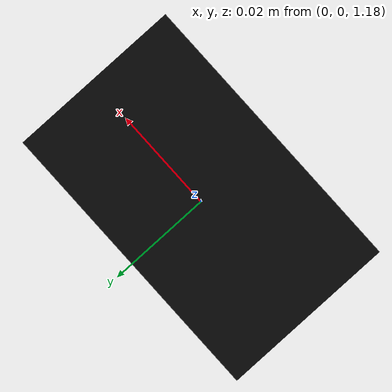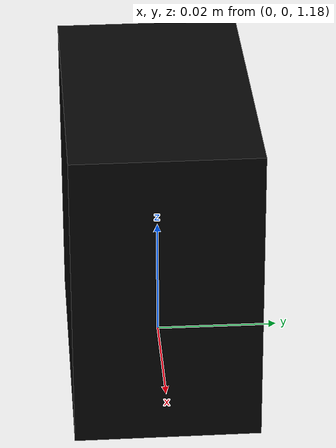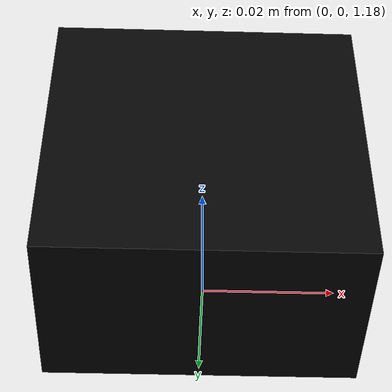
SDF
<?xml version="1.0" ?>
<sdf version="1.9">
  <model name="astroquad_static_downward_camera">
    <static>true</static>
    <link name="downward_camera_link">
      <pose>0 0 1.20 0 1.57079632679 1.57079632679</pose>
      <visual name="camera_visual">
        <geometry>
          <box>
            <size>0.05 0.05 0.03</size>
          </box>
        </geometry>
        <material>
          <ambient>0.02 0.02 0.02 1</ambient>
          <diffuse>0.02 0.02 0.02 1</diffuse>
        </material>
      </visual>
      <sensor name="downward_camera" type="camera">
        <camera>
          <horizontal_fov>2.2</horizontal_fov>
          <image>
            <width>640</width>
            <height>480</height>
            <!-- L8 mono matches the real IMX296 global-shutter camera. -->
            <format>L8</format>
          </image>
          <clip>
            <near>0.05</near>
            <far>20</far>
          </clip>
        </camera>
        <always_on>true</always_on>
        <update_rate>24</update_rate>
        <visualize>true</visualize>
      </sensor>
    </link>
  </model>
</sdf>
